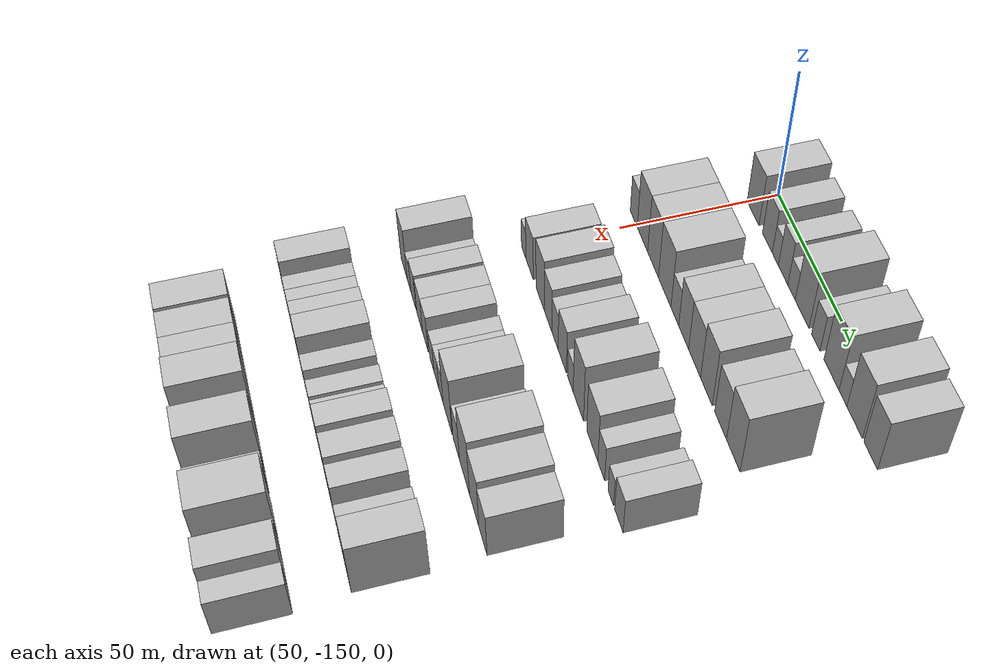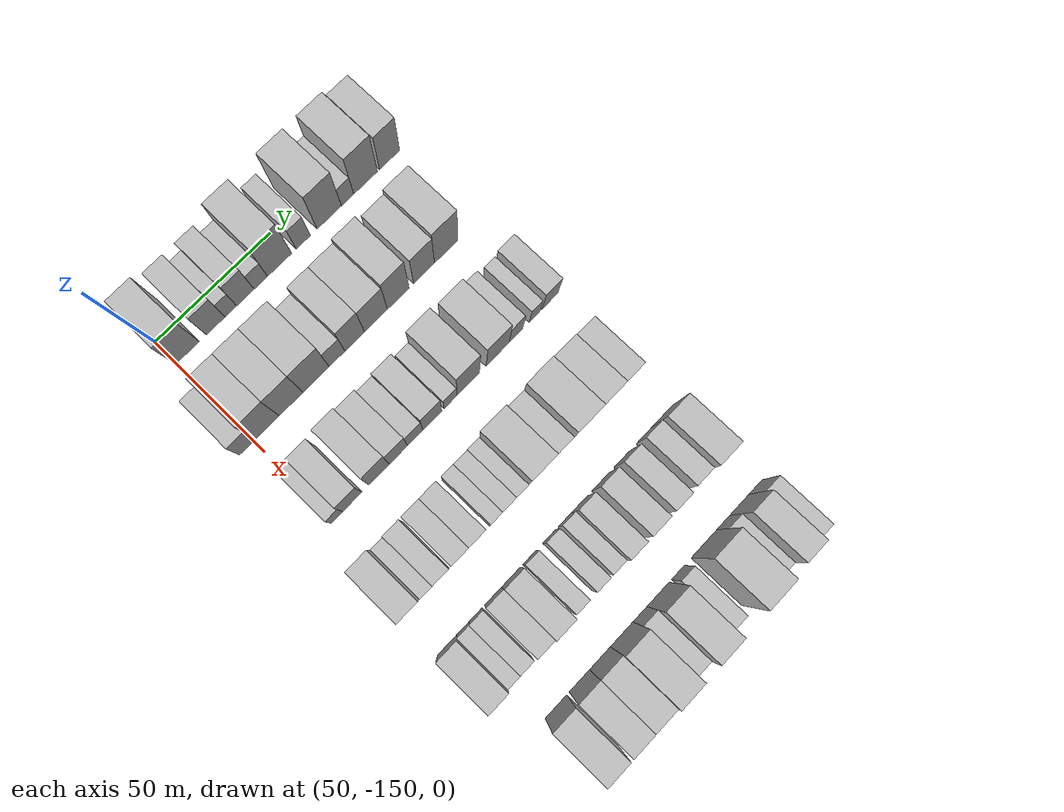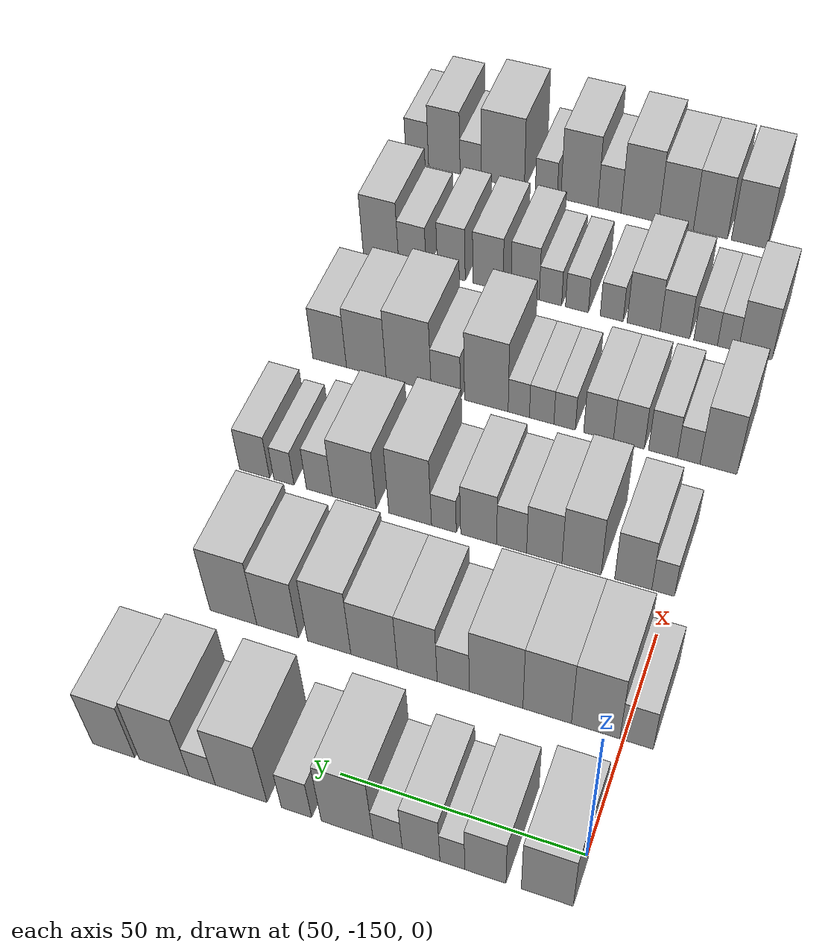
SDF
<sdf version="1.6">
 <world name="default">
  <model name="building_50">
   <static>1</static>
   <pose>50.0000 -145.2269 0 0.000000 0.000000 0.000000</pose>
   <link name="link">
    <pose>0 0 10.50 0 0 0</pose>
    <collision name="collision"><geometry><box><size>20.0000 10.0897 21.0000</size></box></geometry></collision>
    <visual name="visual">
     <cast_shadows>0</cast_shadows>
     <geometry><box><size>20.0000 10.0897 21.0000</size></box></geometry>
     <material>
      <script>
       <uri>model://HANNAS_wall/materials/scripts</uri>
       <uri>model://HANNAS_wall/materials/textures</uri>
       <name>vrc/HANNAS_wall</name>
      </script>
     </material>
    </visual>
   </link>
  </model>
  <model name="building_51">
   <static>1</static>
   <pose>50.0000 -133.1259 0 0.000000 0.000000 0.000000</pose>
   <link name="link">
    <pose>0 0 9.00 0 0 0</pose>
    <collision name="collision"><geometry><box><size>20.0000 8.1121 18.0000</size></box></geometry></collision>
    <visual name="visual">
     <cast_shadows>0</cast_shadows>
     <geometry><box><size>20.0000 8.1121 18.0000</size></box></geometry>
     <material>
      <script>
       <uri>model://HANNAS_wall/materials/scripts</uri>
       <uri>model://HANNAS_wall/materials/textures</uri>
       <name>vrc/HANNAS_wall</name>
      </script>
     </material>
    </visual>
   </link>
  </model>
  <model name="building_52">
   <static>1</static>
   <pose>50.0000 -126.5854 0 0.000000 0.000000 0.000000</pose>
   <link name="link">
    <pose>0 0 6.00 0 0 0</pose>
    <collision name="collision"><geometry><box><size>20.0000 4.9690 12.0000</size></box></geometry></collision>
    <visual name="visual">
     <cast_shadows>0</cast_shadows>
     <geometry><box><size>20.0000 4.9690 12.0000</size></box></geometry>
     <material>
      <script>
       <uri>model://HANNAS_wall/materials/scripts</uri>
       <uri>model://HANNAS_wall/materials/textures</uri>
       <name>vrc/HANNAS_wall</name>
      </script>
     </material>
    </visual>
   </link>
  </model>
  <model name="building_53">
   <static>1</static>
   <pose>50.0000 -120.3051 0 0.000000 0.000000 0.000000</pose>
   <link name="link">
    <pose>0 0 9.00 0 0 0</pose>
    <collision name="collision"><geometry><box><size>20.0000 7.5916 18.0000</size></box></geometry></collision>
    <visual name="visual">
     <cast_shadows>0</cast_shadows>
     <geometry><box><size>20.0000 7.5916 18.0000</size></box></geometry>
     <material>
      <script>
       <uri>model://HANNAS_wall/materials/scripts</uri>
       <uri>model://HANNAS_wall/materials/textures</uri>
       <name>vrc/HANNAS_wall</name>
      </script>
     </material>
    </visual>
   </link>
  </model>
  <model name="building_54">
   <static>1</static>
   <pose>50.0000 -113.5616 0 0.000000 0.000000 0.000000</pose>
   <link name="link">
    <pose>0 0 6.00 0 0 0</pose>
    <collision name="collision"><geometry><box><size>20.0000 5.8954 12.0000</size></box></geometry></collision>
    <visual name="visual">
     <cast_shadows>0</cast_shadows>
     <geometry><box><size>20.0000 5.8954 12.0000</size></box></geometry>
     <material>
      <script>
       <uri>model://HANNAS_wall/materials/scripts</uri>
       <uri>model://HANNAS_wall/materials/textures</uri>
       <name>vrc/HANNAS_wall</name>
      </script>
     </material>
    </visual>
   </link>
  </model>
  <model name="building_55">
   <static>1</static>
   <pose>50.0000 -105.3079 0 0.000000 0.000000 0.000000</pose>
   <link name="link">
    <pose>0 0 12.00 0 0 0</pose>
    <collision name="collision"><geometry><box><size>20.0000 10.6120 24.0000</size></box></geometry></collision>
    <visual name="visual">
     <cast_shadows>0</cast_shadows>
     <geometry><box><size>20.0000 10.6120 24.0000</size></box></geometry>
     <material>
      <script>
       <uri>model://HANNAS_wall/materials/scripts</uri>
       <uri>model://HANNAS_wall/materials/textures</uri>
       <name>vrc/HANNAS_wall</name>
      </script>
     </material>
    </visual>
   </link>
  </model>
  <model name="building_56">
   <static>1</static>
   <pose>50.0000 -94.8474 0 0.000000 0.000000 0.000000</pose>
   <link name="link">
    <pose>0 0 7.50 0 0 0</pose>
    <collision name="collision"><geometry><box><size>20.0000 6.3090 15.0000</size></box></geometry></collision>
    <visual name="visual">
     <cast_shadows>0</cast_shadows>
     <geometry><box><size>20.0000 6.3090 15.0000</size></box></geometry>
     <material>
      <script>
       <uri>model://HANNAS_wall/materials/scripts</uri>
       <uri>model://HANNAS_wall/materials/textures</uri>
       <name>vrc/HANNAS_wall</name>
      </script>
     </material>
    </visual>
   </link>
  </model>
  <model name="building_57">
   <static>1</static>
   <pose>50.0000 -83.2250 0 0.000000 0.000000 0.000000</pose>
   <link name="link">
    <pose>0 0 12.00 0 0 0</pose>
    <collision name="collision"><geometry><box><size>20.0000 10.9358 24.0000</size></box></geometry></collision>
    <visual name="visual">
     <cast_shadows>0</cast_shadows>
     <geometry><box><size>20.0000 10.9358 24.0000</size></box></geometry>
     <material>
      <script>
       <uri>model://HANNAS_wall/materials/scripts</uri>
       <uri>model://HANNAS_wall/materials/textures</uri>
       <name>vrc/HANNAS_wall</name>
      </script>
     </material>
    </visual>
   </link>
  </model>
  <model name="building_58">
   <static>1</static>
   <pose>50.0000 -74.9646 0 0.000000 0.000000 0.000000</pose>
   <link name="link">
    <pose>0 0 6.00 0 0 0</pose>
    <collision name="collision"><geometry><box><size>20.0000 5.5850 12.0000</size></box></geometry></collision>
    <visual name="visual">
     <cast_shadows>0</cast_shadows>
     <geometry><box><size>20.0000 5.5850 12.0000</size></box></geometry>
     <material>
      <script>
       <uri>model://HANNAS_wall/materials/scripts</uri>
       <uri>model://HANNAS_wall/materials/textures</uri>
       <name>vrc/HANNAS_wall</name>
      </script>
     </material>
    </visual>
   </link>
  </model>
  <model name="building_59">
   <static>1</static>
   <pose>50.0000 -66.7866 0 0.000000 0.000000 0.000000</pose>
   <link name="link">
    <pose>0 0 12.00 0 0 0</pose>
    <collision name="collision"><geometry><box><size>20.0000 10.7712 24.0000</size></box></geometry></collision>
    <visual name="visual">
     <cast_shadows>0</cast_shadows>
     <geometry><box><size>20.0000 10.7712 24.0000</size></box></geometry>
     <material>
      <script>
       <uri>model://HANNAS_wall/materials/scripts</uri>
       <uri>model://HANNAS_wall/materials/textures</uri>
       <name>vrc/HANNAS_wall</name>
      </script>
     </material>
    </visual>
   </link>
  </model>
  <model name="building_60">
   <static>1</static>
   <pose>50.0000 -55.7964 0 0.000000 0.000000 0.000000</pose>
   <link name="link">
    <pose>0 0 10.50 0 0 0</pose>
    <collision name="collision"><geometry><box><size>20.0000 9.2092 21.0000</size></box></geometry></collision>
    <visual name="visual">
     <cast_shadows>0</cast_shadows>
     <geometry><box><size>20.0000 9.2092 21.0000</size></box></geometry>
     <material>
      <script>
       <uri>model://HANNAS_wall/materials/scripts</uri>
       <uri>model://HANNAS_wall/materials/textures</uri>
       <name>vrc/HANNAS_wall</name>
      </script>
     </material>
    </visual>
   </link>
  </model>
  <model name="building_173">
   <static>1</static>
   <pose>85.0000 -152.5597 0 0.000000 0.000000 0.000000</pose>
   <link name="link">
    <pose>0 0 7.50 0 0 0</pose>
    <collision name="collision"><geometry><box><size>20.0000 6.8499 15.0000</size></box></geometry></collision>
    <visual name="visual">
     <cast_shadows>0</cast_shadows>
     <geometry><box><size>20.0000 6.8499 15.0000</size></box></geometry>
     <material>
      <script>
       <uri>model://HANNAS_wall/materials/scripts</uri>
       <uri>model://HANNAS_wall/materials/textures</uri>
       <name>vrc/HANNAS_wall</name>
      </script>
     </material>
    </visual>
   </link>
  </model>
  <model name="building_174">
   <static>1</static>
   <pose>85.0000 -144.1277 0 0.000000 0.000000 0.000000</pose>
   <link name="link">
    <pose>0 0 12.00 0 0 0</pose>
    <collision name="collision"><geometry><box><size>20.0000 10.0141 24.0000</size></box></geometry></collision>
    <visual name="visual">
     <cast_shadows>0</cast_shadows>
     <geometry><box><size>20.0000 10.0141 24.0000</size></box></geometry>
     <material>
      <script>
       <uri>model://HANNAS_wall/materials/scripts</uri>
       <uri>model://HANNAS_wall/materials/textures</uri>
       <name>vrc/HANNAS_wall</name>
      </script>
     </material>
    </visual>
   </link>
  </model>
  <model name="building_175">
   <static>1</static>
   <pose>85.0000 -134.0422 0 0.000000 0.000000 0.000000</pose>
   <link name="link">
    <pose>0 0 12.00 0 0 0</pose>
    <collision name="collision"><geometry><box><size>20.0000 10.1569 24.0000</size></box></geometry></collision>
    <visual name="visual">
     <cast_shadows>0</cast_shadows>
     <geometry><box><size>20.0000 10.1569 24.0000</size></box></geometry>
     <material>
      <script>
       <uri>model://HANNAS_wall/materials/scripts</uri>
       <uri>model://HANNAS_wall/materials/textures</uri>
       <name>vrc/HANNAS_wall</name>
      </script>
     </material>
    </visual>
   </link>
  </model>
  <model name="building_176">
   <static>1</static>
   <pose>85.0000 -123.2810 0 0.000000 0.000000 0.000000</pose>
   <link name="link">
    <pose>0 0 12.00 0 0 0</pose>
    <collision name="collision"><geometry><box><size>20.0000 11.3655 24.0000</size></box></geometry></collision>
    <visual name="visual">
     <cast_shadows>0</cast_shadows>
     <geometry><box><size>20.0000 11.3655 24.0000</size></box></geometry>
     <material>
      <script>
       <uri>model://HANNAS_wall/materials/scripts</uri>
       <uri>model://HANNAS_wall/materials/textures</uri>
       <name>vrc/HANNAS_wall</name>
      </script>
     </material>
    </visual>
   </link>
  </model>
  <model name="building_177">
   <static>1</static>
   <pose>85.0000 -114.1493 0 0.000000 0.000000 0.000000</pose>
   <link name="link">
    <pose>0 0 7.50 0 0 0</pose>
    <collision name="collision"><geometry><box><size>20.0000 6.8978 15.0000</size></box></geometry></collision>
    <visual name="visual">
     <cast_shadows>0</cast_shadows>
     <geometry><box><size>20.0000 6.8978 15.0000</size></box></geometry>
     <material>
      <script>
       <uri>model://HANNAS_wall/materials/scripts</uri>
       <uri>model://HANNAS_wall/materials/textures</uri>
       <name>vrc/HANNAS_wall</name>
      </script>
     </material>
    </visual>
   </link>
  </model>
  <model name="building_178">
   <static>1</static>
   <pose>85.0000 -106.3843 0 0.000000 0.000000 0.000000</pose>
   <link name="link">
    <pose>0 0 10.50 0 0 0</pose>
    <collision name="collision"><geometry><box><size>20.0000 8.6324 21.0000</size></box></geometry></collision>
    <visual name="visual">
     <cast_shadows>0</cast_shadows>
     <geometry><box><size>20.0000 8.6324 21.0000</size></box></geometry>
     <material>
      <script>
       <uri>model://HANNAS_wall/materials/scripts</uri>
       <uri>model://HANNAS_wall/materials/textures</uri>
       <name>vrc/HANNAS_wall</name>
      </script>
     </material>
    </visual>
   </link>
  </model>
  <model name="building_179">
   <static>1</static>
   <pose>85.0000 -96.9571 0 0.000000 0.000000 0.000000</pose>
   <link name="link">
    <pose>0 0 10.50 0 0 0</pose>
    <collision name="collision"><geometry><box><size>20.0000 10.2219 21.0000</size></box></geometry></collision>
    <visual name="visual">
     <cast_shadows>0</cast_shadows>
     <geometry><box><size>20.0000 10.2219 21.0000</size></box></geometry>
     <material>
      <script>
       <uri>model://HANNAS_wall/materials/scripts</uri>
       <uri>model://HANNAS_wall/materials/textures</uri>
       <name>vrc/HANNAS_wall</name>
      </script>
     </material>
    </visual>
   </link>
  </model>
  <model name="building_180">
   <static>1</static>
   <pose>85.0000 -87.0133 0 0.000000 0.000000 0.000000</pose>
   <link name="link">
    <pose>0 0 12.00 0 0 0</pose>
    <collision name="collision"><geometry><box><size>20.0000 9.6657 24.0000</size></box></geometry></collision>
    <visual name="visual">
     <cast_shadows>0</cast_shadows>
     <geometry><box><size>20.0000 9.6657 24.0000</size></box></geometry>
     <material>
      <script>
       <uri>model://HANNAS_wall/materials/scripts</uri>
       <uri>model://HANNAS_wall/materials/textures</uri>
       <name>vrc/HANNAS_wall</name>
      </script>
     </material>
    </visual>
   </link>
  </model>
  <model name="building_181">
   <static>1</static>
   <pose>85.0000 -75.4759 0 0.000000 0.000000 0.000000</pose>
   <link name="link">
    <pose>0 0 10.50 0 0 0</pose>
    <collision name="collision"><geometry><box><size>20.0000 9.4091 21.0000</size></box></geometry></collision>
    <visual name="visual">
     <cast_shadows>0</cast_shadows>
     <geometry><box><size>20.0000 9.4091 21.0000</size></box></geometry>
     <material>
      <script>
       <uri>model://HANNAS_wall/materials/scripts</uri>
       <uri>model://HANNAS_wall/materials/textures</uri>
       <name>vrc/HANNAS_wall</name>
      </script>
     </material>
    </visual>
   </link>
  </model>
  <model name="building_182">
   <static>1</static>
   <pose>85.0000 -65.4467 0 0.000000 0.000000 0.000000</pose>
   <link name="link">
    <pose>0 0 12.00 0 0 0</pose>
    <collision name="collision"><geometry><box><size>20.0000 10.6491 24.0000</size></box></geometry></collision>
    <visual name="visual">
     <cast_shadows>0</cast_shadows>
     <geometry><box><size>20.0000 10.6491 24.0000</size></box></geometry>
     <material>
      <script>
       <uri>model://HANNAS_wall/materials/scripts</uri>
       <uri>model://HANNAS_wall/materials/textures</uri>
       <name>vrc/HANNAS_wall</name>
      </script>
     </material>
    </visual>
   </link>
  </model>
  <model name="building_301">
   <static>1</static>
   <pose>120.0000 -148.5666 0 0.000000 0.000000 0.000000</pose>
   <link name="link">
    <pose>0 0 6.00 0 0 0</pose>
    <collision name="collision"><geometry><box><size>20.0000 4.9468 12.0000</size></box></geometry></collision>
    <visual name="visual">
     <cast_shadows>0</cast_shadows>
     <geometry><box><size>20.0000 4.9468 12.0000</size></box></geometry>
     <material>
      <script>
       <uri>model://HANNAS_wall/materials/scripts</uri>
       <uri>model://HANNAS_wall/materials/textures</uri>
       <name>vrc/HANNAS_wall</name>
      </script>
     </material>
    </visual>
   </link>
  </model>
  <model name="building_302">
   <static>1</static>
   <pose>120.0000 -142.0210 0 0.000000 0.000000 0.000000</pose>
   <link name="link">
    <pose>0 0 9.00 0 0 0</pose>
    <collision name="collision"><geometry><box><size>20.0000 8.1444 18.0000</size></box></geometry></collision>
    <visual name="visual">
     <cast_shadows>0</cast_shadows>
     <geometry><box><size>20.0000 8.1444 18.0000</size></box></geometry>
     <material>
      <script>
       <uri>model://HANNAS_wall/materials/scripts</uri>
       <uri>model://HANNAS_wall/materials/textures</uri>
       <name>vrc/HANNAS_wall</name>
      </script>
     </material>
    </visual>
   </link>
  </model>
  <model name="building_303">
   <static>1</static>
   <pose>120.0000 -130.5805 0 0.000000 0.000000 0.000000</pose>
   <link name="link">
    <pose>0 0 10.50 0 0 0</pose>
    <collision name="collision"><geometry><box><size>20.0000 8.7367 21.0000</size></box></geometry></collision>
    <visual name="visual">
     <cast_shadows>0</cast_shadows>
     <geometry><box><size>20.0000 8.7367 21.0000</size></box></geometry>
     <material>
      <script>
       <uri>model://HANNAS_wall/materials/scripts</uri>
       <uri>model://HANNAS_wall/materials/textures</uri>
       <name>vrc/HANNAS_wall</name>
      </script>
     </material>
    </visual>
   </link>
  </model>
  <model name="building_304">
   <static>1</static>
   <pose>120.0000 -122.2394 0 0.000000 0.000000 0.000000</pose>
   <link name="link">
    <pose>0 0 9.00 0 0 0</pose>
    <collision name="collision"><geometry><box><size>20.0000 7.9455 18.0000</size></box></geometry></collision>
    <visual name="visual">
     <cast_shadows>0</cast_shadows>
     <geometry><box><size>20.0000 7.9455 18.0000</size></box></geometry>
     <material>
      <script>
       <uri>model://HANNAS_wall/materials/scripts</uri>
       <uri>model://HANNAS_wall/materials/textures</uri>
       <name>vrc/HANNAS_wall</name>
      </script>
     </material>
    </visual>
   </link>
  </model>
  <model name="building_305">
   <static>1</static>
   <pose>120.0000 -114.8902 0 0.000000 0.000000 0.000000</pose>
   <link name="link">
    <pose>0 0 7.50 0 0 0</pose>
    <collision name="collision"><geometry><box><size>20.0000 6.7528 15.0000</size></box></geometry></collision>
    <visual name="visual">
     <cast_shadows>0</cast_shadows>
     <geometry><box><size>20.0000 6.7528 15.0000</size></box></geometry>
     <material>
      <script>
       <uri>model://HANNAS_wall/materials/scripts</uri>
       <uri>model://HANNAS_wall/materials/textures</uri>
       <name>vrc/HANNAS_wall</name>
      </script>
     </material>
    </visual>
   </link>
  </model>
  <model name="building_306">
   <static>1</static>
   <pose>120.0000 -107.3835 0 0.000000 0.000000 0.000000</pose>
   <link name="link">
    <pose>0 0 9.00 0 0 0</pose>
    <collision name="collision"><geometry><box><size>20.0000 8.2606 18.0000</size></box></geometry></collision>
    <visual name="visual">
     <cast_shadows>0</cast_shadows>
     <geometry><box><size>20.0000 8.2606 18.0000</size></box></geometry>
     <material>
      <script>
       <uri>model://HANNAS_wall/materials/scripts</uri>
       <uri>model://HANNAS_wall/materials/textures</uri>
       <name>vrc/HANNAS_wall</name>
      </script>
     </material>
    </visual>
   </link>
  </model>
  <model name="building_307">
   <static>1</static>
   <pose>120.0000 -99.3893 0 0.000000 0.000000 0.000000</pose>
   <link name="link">
    <pose>0 0 6.00 0 0 0</pose>
    <collision name="collision"><geometry><box><size>20.0000 5.7278 12.0000</size></box></geometry></collision>
    <visual name="visual">
     <cast_shadows>0</cast_shadows>
     <geometry><box><size>20.0000 5.7278 12.0000</size></box></geometry>
     <material>
      <script>
       <uri>model://HANNAS_wall/materials/scripts</uri>
       <uri>model://HANNAS_wall/materials/textures</uri>
       <name>vrc/HANNAS_wall</name>
      </script>
     </material>
    </visual>
   </link>
  </model>
  <model name="building_308">
   <static>1</static>
   <pose>120.0000 -91.5436 0 0.000000 0.000000 0.000000</pose>
   <link name="link">
    <pose>0 0 12.00 0 0 0</pose>
    <collision name="collision"><geometry><box><size>20.0000 9.9637 24.0000</size></box></geometry></collision>
    <visual name="visual">
     <cast_shadows>0</cast_shadows>
     <geometry><box><size>20.0000 9.9637 24.0000</size></box></geometry>
     <material>
      <script>
       <uri>model://HANNAS_wall/materials/scripts</uri>
       <uri>model://HANNAS_wall/materials/textures</uri>
       <name>vrc/HANNAS_wall</name>
      </script>
     </material>
    </visual>
   </link>
  </model>
  <model name="building_309">
   <static>1</static>
   <pose>120.0000 -78.3502 0 0.000000 0.000000 0.000000</pose>
   <link name="link">
    <pose>0 0 10.50 0 0 0</pose>
    <collision name="collision"><geometry><box><size>20.0000 10.4231 21.0000</size></box></geometry></collision>
    <visual name="visual">
     <cast_shadows>0</cast_shadows>
     <geometry><box><size>20.0000 10.4231 21.0000</size></box></geometry>
     <material>
      <script>
       <uri>model://HANNAS_wall/materials/scripts</uri>
       <uri>model://HANNAS_wall/materials/textures</uri>
       <name>vrc/HANNAS_wall</name>
      </script>
     </material>
    </visual>
   </link>
  </model>
  <model name="building_310">
   <static>1</static>
   <pose>120.0000 -70.0606 0 0.000000 0.000000 0.000000</pose>
   <link name="link">
    <pose>0 0 7.50 0 0 0</pose>
    <collision name="collision"><geometry><box><size>20.0000 6.1561 15.0000</size></box></geometry></collision>
    <visual name="visual">
     <cast_shadows>0</cast_shadows>
     <geometry><box><size>20.0000 6.1561 15.0000</size></box></geometry>
     <material>
      <script>
       <uri>model://HANNAS_wall/materials/scripts</uri>
       <uri>model://HANNAS_wall/materials/textures</uri>
       <name>vrc/HANNAS_wall</name>
      </script>
     </material>
    </visual>
   </link>
  </model>
  <model name="building_311">
   <static>1</static>
   <pose>120.0000 -61.5559 0 0.000000 0.000000 0.000000</pose>
   <link name="link">
    <pose>0 0 6.00 0 0 0</pose>
    <collision name="collision"><geometry><box><size>20.0000 4.8532 12.0000</size></box></geometry></collision>
    <visual name="visual">
     <cast_shadows>0</cast_shadows>
     <geometry><box><size>20.0000 4.8532 12.0000</size></box></geometry>
     <material>
      <script>
       <uri>model://HANNAS_wall/materials/scripts</uri>
       <uri>model://HANNAS_wall/materials/textures</uri>
       <name>vrc/HANNAS_wall</name>
      </script>
     </material>
    </visual>
   </link>
  </model>
  <model name="building_312">
   <static>1</static>
   <pose>120.0000 -54.4725 0 0.000000 0.000000 0.000000</pose>
   <link name="link">
    <pose>0 0 7.50 0 0 0</pose>
    <collision name="collision"><geometry><box><size>20.0000 7.3135 15.0000</size></box></geometry></collision>
    <visual name="visual">
     <cast_shadows>0</cast_shadows>
     <geometry><box><size>20.0000 7.3135 15.0000</size></box></geometry>
     <material>
      <script>
       <uri>model://HANNAS_wall/materials/scripts</uri>
       <uri>model://HANNAS_wall/materials/textures</uri>
       <name>vrc/HANNAS_wall</name>
      </script>
     </material>
    </visual>
   </link>
  </model>
  <model name="building_426">
   <static>1</static>
   <pose>155.0000 -151.9284 0 0.000000 0.000000 0.000000</pose>
   <link name="link">
    <pose>0 0 10.50 0 0 0</pose>
    <collision name="collision"><geometry><box><size>20.0000 8.4810 21.0000</size></box></geometry></collision>
    <visual name="visual">
     <cast_shadows>0</cast_shadows>
     <geometry><box><size>20.0000 8.4810 21.0000</size></box></geometry>
     <material>
      <script>
       <uri>model://HANNAS_wall/materials/scripts</uri>
       <uri>model://HANNAS_wall/materials/textures</uri>
       <name>vrc/HANNAS_wall</name>
      </script>
     </material>
    </visual>
   </link>
  </model>
  <model name="building_427">
   <static>1</static>
   <pose>155.0000 -145.0652 0 0.000000 0.000000 0.000000</pose>
   <link name="link">
    <pose>0 0 6.00 0 0 0</pose>
    <collision name="collision"><geometry><box><size>20.0000 5.2454 12.0000</size></box></geometry></collision>
    <visual name="visual">
     <cast_shadows>0</cast_shadows>
     <geometry><box><size>20.0000 5.2454 12.0000</size></box></geometry>
     <material>
      <script>
       <uri>model://HANNAS_wall/materials/scripts</uri>
       <uri>model://HANNAS_wall/materials/textures</uri>
       <name>vrc/HANNAS_wall</name>
      </script>
     </material>
    </visual>
   </link>
  </model>
  <model name="building_428">
   <static>1</static>
   <pose>155.0000 -139.1017 0 0.000000 0.000000 0.000000</pose>
   <link name="link">
    <pose>0 0 7.50 0 0 0</pose>
    <collision name="collision"><geometry><box><size>20.0000 6.6816 15.0000</size></box></geometry></collision>
    <visual name="visual">
     <cast_shadows>0</cast_shadows>
     <geometry><box><size>20.0000 6.6816 15.0000</size></box></geometry>
     <material>
      <script>
       <uri>model://HANNAS_wall/materials/scripts</uri>
       <uri>model://HANNAS_wall/materials/textures</uri>
       <name>vrc/HANNAS_wall</name>
      </script>
     </material>
    </visual>
   </link>
  </model>
  <model name="building_429">
   <static>1</static>
   <pose>155.0000 -131.1375 0 0.000000 0.000000 0.000000</pose>
   <link name="link">
    <pose>0 0 7.50 0 0 0</pose>
    <collision name="collision"><geometry><box><size>20.0000 7.2468 15.0000</size></box></geometry></collision>
    <visual name="visual">
     <cast_shadows>0</cast_shadows>
     <geometry><box><size>20.0000 7.2468 15.0000</size></box></geometry>
     <material>
      <script>
       <uri>model://HANNAS_wall/materials/scripts</uri>
       <uri>model://HANNAS_wall/materials/textures</uri>
       <name>vrc/HANNAS_wall</name>
      </script>
     </material>
    </visual>
   </link>
  </model>
  <model name="building_430">
   <static>1</static>
   <pose>155.0000 -123.9995 0 0.000000 0.000000 0.000000</pose>
   <link name="link">
    <pose>0 0 7.50 0 0 0</pose>
    <collision name="collision"><geometry><box><size>20.0000 7.0292 15.0000</size></box></geometry></collision>
    <visual name="visual">
     <cast_shadows>0</cast_shadows>
     <geometry><box><size>20.0000 7.0292 15.0000</size></box></geometry>
     <material>
      <script>
       <uri>model://HANNAS_wall/materials/scripts</uri>
       <uri>model://HANNAS_wall/materials/textures</uri>
       <name>vrc/HANNAS_wall</name>
      </script>
     </material>
    </visual>
   </link>
  </model>
  <model name="building_431">
   <static>1</static>
   <pose>155.0000 -115.9286 0 0.000000 0.000000 0.000000</pose>
   <link name="link">
    <pose>0 0 6.00 0 0 0</pose>
    <collision name="collision"><geometry><box><size>20.0000 5.1125 12.0000</size></box></geometry></collision>
    <visual name="visual">
     <cast_shadows>0</cast_shadows>
     <geometry><box><size>20.0000 5.1125 12.0000</size></box></geometry>
     <material>
      <script>
       <uri>model://HANNAS_wall/materials/scripts</uri>
       <uri>model://HANNAS_wall/materials/textures</uri>
       <name>vrc/HANNAS_wall</name>
      </script>
     </material>
    </visual>
   </link>
  </model>
  <model name="building_432">
   <static>1</static>
   <pose>155.0000 -110.4306 0 0.000000 0.000000 0.000000</pose>
   <link name="link">
    <pose>0 0 6.00 0 0 0</pose>
    <collision name="collision"><geometry><box><size>20.0000 5.8835 12.0000</size></box></geometry></collision>
    <visual name="visual">
     <cast_shadows>0</cast_shadows>
     <geometry><box><size>20.0000 5.8835 12.0000</size></box></geometry>
     <material>
      <script>
       <uri>model://HANNAS_wall/materials/scripts</uri>
       <uri>model://HANNAS_wall/materials/textures</uri>
       <name>vrc/HANNAS_wall</name>
      </script>
     </material>
    </visual>
   </link>
  </model>
  <model name="building_433">
   <static>1</static>
   <pose>155.0000 -104.9142 0 0.000000 0.000000 0.000000</pose>
   <link name="link">
    <pose>0 0 6.00 0 0 0</pose>
    <collision name="collision"><geometry><box><size>20.0000 5.1493 12.0000</size></box></geometry></collision>
    <visual name="visual">
     <cast_shadows>0</cast_shadows>
     <geometry><box><size>20.0000 5.1493 12.0000</size></box></geometry>
     <material>
      <script>
       <uri>model://HANNAS_wall/materials/scripts</uri>
       <uri>model://HANNAS_wall/materials/textures</uri>
       <name>vrc/HANNAS_wall</name>
      </script>
     </material>
    </visual>
   </link>
  </model>
  <model name="building_434">
   <static>1</static>
   <pose>155.0000 -97.0307 0 0.000000 0.000000 0.000000</pose>
   <link name="link">
    <pose>0 0 12.00 0 0 0</pose>
    <collision name="collision"><geometry><box><size>20.0000 10.6175 24.0000</size></box></geometry></collision>
    <visual name="visual">
     <cast_shadows>0</cast_shadows>
     <geometry><box><size>20.0000 10.6175 24.0000</size></box></geometry>
     <material>
      <script>
       <uri>model://HANNAS_wall/materials/scripts</uri>
       <uri>model://HANNAS_wall/materials/textures</uri>
       <name>vrc/HANNAS_wall</name>
      </script>
     </material>
    </visual>
   </link>
  </model>
  <model name="building_435">
   <static>1</static>
   <pose>155.0000 -87.1105 0 0.000000 0.000000 0.000000</pose>
   <link name="link">
    <pose>0 0 7.50 0 0 0</pose>
    <collision name="collision"><geometry><box><size>20.0000 7.2230 15.0000</size></box></geometry></collision>
    <visual name="visual">
     <cast_shadows>0</cast_shadows>
     <geometry><box><size>20.0000 7.2230 15.0000</size></box></geometry>
     <material>
      <script>
       <uri>model://HANNAS_wall/materials/scripts</uri>
       <uri>model://HANNAS_wall/materials/textures</uri>
       <name>vrc/HANNAS_wall</name>
      </script>
     </material>
    </visual>
   </link>
  </model>
  <model name="building_436">
   <static>1</static>
   <pose>155.0000 -77.8862 0 0.000000 0.000000 0.000000</pose>
   <link name="link">
    <pose>0 0 12.00 0 0 0</pose>
    <collision name="collision"><geometry><box><size>20.0000 11.2255 24.0000</size></box></geometry></collision>
    <visual name="visual">
     <cast_shadows>0</cast_shadows>
     <geometry><box><size>20.0000 11.2255 24.0000</size></box></geometry>
     <material>
      <script>
       <uri>model://HANNAS_wall/materials/scripts</uri>
       <uri>model://HANNAS_wall/materials/textures</uri>
       <name>vrc/HANNAS_wall</name>
      </script>
     </material>
    </visual>
   </link>
  </model>
  <model name="building_437">
   <static>1</static>
   <pose>155.0000 -67.2602 0 0.000000 0.000000 0.000000</pose>
   <link name="link">
    <pose>0 0 10.50 0 0 0</pose>
    <collision name="collision"><geometry><box><size>20.0000 10.0267 21.0000</size></box></geometry></collision>
    <visual name="visual">
     <cast_shadows>0</cast_shadows>
     <geometry><box><size>20.0000 10.0267 21.0000</size></box></geometry>
     <material>
      <script>
       <uri>model://HANNAS_wall/materials/scripts</uri>
       <uri>model://HANNAS_wall/materials/textures</uri>
       <name>vrc/HANNAS_wall</name>
      </script>
     </material>
    </visual>
   </link>
  </model>
  <model name="building_438">
   <static>1</static>
   <pose>155.0000 -57.9717 0 0.000000 0.000000 0.000000</pose>
   <link name="link">
    <pose>0 0 9.00 0 0 0</pose>
    <collision name="collision"><geometry><box><size>20.0000 8.5504 18.0000</size></box></geometry></collision>
    <visual name="visual">
     <cast_shadows>0</cast_shadows>
     <geometry><box><size>20.0000 8.5504 18.0000</size></box></geometry>
     <material>
      <script>
       <uri>model://HANNAS_wall/materials/scripts</uri>
       <uri>model://HANNAS_wall/materials/textures</uri>
       <name>vrc/HANNAS_wall</name>
      </script>
     </material>
    </visual>
   </link>
  </model>
  <model name="building_554">
   <static>1</static>
   <pose>190.0000 -152.2055 0 0.000000 0.000000 0.000000</pose>
   <link name="link">
    <pose>0 0 9.00 0 0 0</pose>
    <collision name="collision"><geometry><box><size>20.0000 8.1970 18.0000</size></box></geometry></collision>
    <visual name="visual">
     <cast_shadows>0</cast_shadows>
     <geometry><box><size>20.0000 8.1970 18.0000</size></box></geometry>
     <material>
      <script>
       <uri>model://HANNAS_wall/materials/scripts</uri>
       <uri>model://HANNAS_wall/materials/textures</uri>
       <name>vrc/HANNAS_wall</name>
      </script>
     </material>
    </visual>
   </link>
  </model>
  <model name="building_555">
   <static>1</static>
   <pose>190.0000 -145.5889 0 0.000000 0.000000 0.000000</pose>
   <link name="link">
    <pose>0 0 6.00 0 0 0</pose>
    <collision name="collision"><geometry><box><size>20.0000 5.0362 12.0000</size></box></geometry></collision>
    <visual name="visual">
     <cast_shadows>0</cast_shadows>
     <geometry><box><size>20.0000 5.0362 12.0000</size></box></geometry>
     <material>
      <script>
       <uri>model://HANNAS_wall/materials/scripts</uri>
       <uri>model://HANNAS_wall/materials/textures</uri>
       <name>vrc/HANNAS_wall</name>
      </script>
     </material>
    </visual>
   </link>
  </model>
  <model name="building_556">
   <static>1</static>
   <pose>190.0000 -140.1961 0 0.000000 0.000000 0.000000</pose>
   <link name="link">
    <pose>0 0 6.00 0 0 0</pose>
    <collision name="collision"><geometry><box><size>20.0000 5.7494 12.0000</size></box></geometry></collision>
    <visual name="visual">
     <cast_shadows>0</cast_shadows>
     <geometry><box><size>20.0000 5.7494 12.0000</size></box></geometry>
     <material>
      <script>
       <uri>model://HANNAS_wall/materials/scripts</uri>
       <uri>model://HANNAS_wall/materials/textures</uri>
       <name>vrc/HANNAS_wall</name>
      </script>
     </material>
    </visual>
   </link>
  </model>
  <model name="building_557">
   <static>1</static>
   <pose>190.0000 -132.6513 0 0.000000 0.000000 0.000000</pose>
   <link name="link">
    <pose>0 0 7.50 0 0 0</pose>
    <collision name="collision"><geometry><box><size>20.0000 7.3403 15.0000</size></box></geometry></collision>
    <visual name="visual">
     <cast_shadows>0</cast_shadows>
     <geometry><box><size>20.0000 7.3403 15.0000</size></box></geometry>
     <material>
      <script>
       <uri>model://HANNAS_wall/materials/scripts</uri>
       <uri>model://HANNAS_wall/materials/textures</uri>
       <name>vrc/HANNAS_wall</name>
      </script>
     </material>
    </visual>
   </link>
  </model>
  <model name="building_558">
   <static>1</static>
   <pose>190.0000 -124.8842 0 0.000000 0.000000 0.000000</pose>
   <link name="link">
    <pose>0 0 9.00 0 0 0</pose>
    <collision name="collision"><geometry><box><size>20.0000 8.1941 18.0000</size></box></geometry></collision>
    <visual name="visual">
     <cast_shadows>0</cast_shadows>
     <geometry><box><size>20.0000 8.1941 18.0000</size></box></geometry>
     <material>
      <script>
       <uri>model://HANNAS_wall/materials/scripts</uri>
       <uri>model://HANNAS_wall/materials/textures</uri>
       <name>vrc/HANNAS_wall</name>
      </script>
     </material>
    </visual>
   </link>
  </model>
  <model name="building_559">
   <static>1</static>
   <pose>190.0000 -116.9172 0 0.000000 0.000000 0.000000</pose>
   <link name="link">
    <pose>0 0 6.00 0 0 0</pose>
    <collision name="collision"><geometry><box><size>20.0000 5.7399 12.0000</size></box></geometry></collision>
    <visual name="visual">
     <cast_shadows>0</cast_shadows>
     <geometry><box><size>20.0000 5.7399 12.0000</size></box></geometry>
     <material>
      <script>
       <uri>model://HANNAS_wall/materials/scripts</uri>
       <uri>model://HANNAS_wall/materials/textures</uri>
       <name>vrc/HANNAS_wall</name>
      </script>
     </material>
    </visual>
   </link>
  </model>
  <model name="building_560">
   <static>1</static>
   <pose>190.0000 -108.1594 0 0.000000 0.000000 0.000000</pose>
   <link name="link">
    <pose>0 0 6.00 0 0 0</pose>
    <collision name="collision"><geometry><box><size>20.0000 5.7757 12.0000</size></box></geometry></collision>
    <visual name="visual">
     <cast_shadows>0</cast_shadows>
     <geometry><box><size>20.0000 5.7757 12.0000</size></box></geometry>
     <material>
      <script>
       <uri>model://HANNAS_wall/materials/scripts</uri>
       <uri>model://HANNAS_wall/materials/textures</uri>
       <name>vrc/HANNAS_wall</name>
      </script>
     </material>
    </visual>
   </link>
  </model>
  <model name="building_561">
   <static>1</static>
   <pose>190.0000 -101.4158 0 0.000000 0.000000 0.000000</pose>
   <link name="link">
    <pose>0 0 6.00 0 0 0</pose>
    <collision name="collision"><geometry><box><size>20.0000 5.7114 12.0000</size></box></geometry></collision>
    <visual name="visual">
     <cast_shadows>0</cast_shadows>
     <geometry><box><size>20.0000 5.7114 12.0000</size></box></geometry>
     <material>
      <script>
       <uri>model://HANNAS_wall/materials/scripts</uri>
       <uri>model://HANNAS_wall/materials/textures</uri>
       <name>vrc/HANNAS_wall</name>
      </script>
     </material>
    </visual>
   </link>
  </model>
  <model name="building_562">
   <static>1</static>
   <pose>190.0000 -94.9399 0 0.000000 0.000000 0.000000</pose>
   <link name="link">
    <pose>0 0 9.00 0 0 0</pose>
    <collision name="collision"><geometry><box><size>20.0000 7.2405 18.0000</size></box></geometry></collision>
    <visual name="visual">
     <cast_shadows>0</cast_shadows>
     <geometry><box><size>20.0000 7.2405 18.0000</size></box></geometry>
     <material>
      <script>
       <uri>model://HANNAS_wall/materials/scripts</uri>
       <uri>model://HANNAS_wall/materials/textures</uri>
       <name>vrc/HANNAS_wall</name>
      </script>
     </material>
    </visual>
   </link>
  </model>
  <model name="building_563">
   <static>1</static>
   <pose>190.0000 -85.3856 0 0.000000 0.000000 0.000000</pose>
   <link name="link">
    <pose>0 0 9.00 0 0 0</pose>
    <collision name="collision"><geometry><box><size>20.0000 7.8682 18.0000</size></box></geometry></collision>
    <visual name="visual">
     <cast_shadows>0</cast_shadows>
     <geometry><box><size>20.0000 7.8682 18.0000</size></box></geometry>
     <material>
      <script>
       <uri>model://HANNAS_wall/materials/scripts</uri>
       <uri>model://HANNAS_wall/materials/textures</uri>
       <name>vrc/HANNAS_wall</name>
      </script>
     </material>
    </visual>
   </link>
  </model>
  <model name="building_564">
   <static>1</static>
   <pose>190.0000 -75.8311 0 0.000000 0.000000 0.000000</pose>
   <link name="link">
    <pose>0 0 9.00 0 0 0</pose>
    <collision name="collision"><geometry><box><size>20.0000 7.2407 18.0000</size></box></geometry></collision>
    <visual name="visual">
     <cast_shadows>0</cast_shadows>
     <geometry><box><size>20.0000 7.2407 18.0000</size></box></geometry>
     <material>
      <script>
       <uri>model://HANNAS_wall/materials/scripts</uri>
       <uri>model://HANNAS_wall/materials/textures</uri>
       <name>vrc/HANNAS_wall</name>
      </script>
     </material>
    </visual>
   </link>
  </model>
  <model name="building_565">
   <static>1</static>
   <pose>190.0000 -65.5764 0 0.000000 0.000000 0.000000</pose>
   <link name="link">
    <pose>0 0 7.50 0 0 0</pose>
    <collision name="collision"><geometry><box><size>20.0000 7.2688 15.0000</size></box></geometry></collision>
    <visual name="visual">
     <cast_shadows>0</cast_shadows>
     <geometry><box><size>20.0000 7.2688 15.0000</size></box></geometry>
     <material>
      <script>
       <uri>model://HANNAS_wall/materials/scripts</uri>
       <uri>model://HANNAS_wall/materials/textures</uri>
       <name>vrc/HANNAS_wall</name>
      </script>
     </material>
    </visual>
   </link>
  </model>
  <model name="building_566">
   <static>1</static>
   <pose>190.0000 -57.2176 0 0.000000 0.000000 0.000000</pose>
   <link name="link">
    <pose>0 0 10.50 0 0 0</pose>
    <collision name="collision"><geometry><box><size>20.0000 9.4487 21.0000</size></box></geometry></collision>
    <visual name="visual">
     <cast_shadows>0</cast_shadows>
     <geometry><box><size>20.0000 9.4487 21.0000</size></box></geometry>
     <material>
      <script>
       <uri>model://HANNAS_wall/materials/scripts</uri>
       <uri>model://HANNAS_wall/materials/textures</uri>
       <name>vrc/HANNAS_wall</name>
      </script>
     </material>
    </visual>
   </link>
  </model>
  <model name="building_683">
   <static>1</static>
   <pose>225.0000 -142.6750 0 0.000000 0.000000 0.000000</pose>
   <link name="link">
    <pose>0 0 10.50 0 0 0</pose>
    <collision name="collision"><geometry><box><size>20.0000 9.2388 21.0000</size></box></geometry></collision>
    <visual name="visual">
     <cast_shadows>0</cast_shadows>
     <geometry><box><size>20.0000 9.2388 21.0000</size></box></geometry>
     <material>
      <script>
       <uri>model://HANNAS_wall/materials/scripts</uri>
       <uri>model://HANNAS_wall/materials/textures</uri>
       <name>vrc/HANNAS_wall</name>
      </script>
     </material>
    </visual>
   </link>
  </model>
  <model name="building_684">
   <static>1</static>
   <pose>225.0000 -132.6343 0 0.000000 0.000000 0.000000</pose>
   <link name="link">
    <pose>0 0 10.50 0 0 0</pose>
    <collision name="collision"><geometry><box><size>20.0000 8.8425 21.0000</size></box></geometry></collision>
    <visual name="visual">
     <cast_shadows>0</cast_shadows>
     <geometry><box><size>20.0000 8.8425 21.0000</size></box></geometry>
     <material>
      <script>
       <uri>model://HANNAS_wall/materials/scripts</uri>
       <uri>model://HANNAS_wall/materials/textures</uri>
       <name>vrc/HANNAS_wall</name>
      </script>
     </material>
    </visual>
   </link>
  </model>
  <model name="building_685">
   <static>1</static>
   <pose>225.0000 -123.6884 0 0.000000 0.000000 0.000000</pose>
   <link name="link">
    <pose>0 0 10.50 0 0 0</pose>
    <collision name="collision"><geometry><box><size>20.0000 9.0493 21.0000</size></box></geometry></collision>
    <visual name="visual">
     <cast_shadows>0</cast_shadows>
     <geometry><box><size>20.0000 9.0493 21.0000</size></box></geometry>
     <material>
      <script>
       <uri>model://HANNAS_wall/materials/scripts</uri>
       <uri>model://HANNAS_wall/materials/textures</uri>
       <name>vrc/HANNAS_wall</name>
      </script>
     </material>
    </visual>
   </link>
  </model>
  <model name="building_686">
   <static>1</static>
   <pose>225.0000 -114.1965 0 0.000000 0.000000 0.000000</pose>
   <link name="link">
    <pose>0 0 12.00 0 0 0</pose>
    <collision name="collision"><geometry><box><size>20.0000 9.9345 24.0000</size></box></geometry></collision>
    <visual name="visual">
     <cast_shadows>0</cast_shadows>
     <geometry><box><size>20.0000 9.9345 24.0000</size></box></geometry>
     <material>
      <script>
       <uri>model://HANNAS_wall/materials/scripts</uri>
       <uri>model://HANNAS_wall/materials/textures</uri>
       <name>vrc/HANNAS_wall</name>
      </script>
     </material>
    </visual>
   </link>
  </model>
  <model name="building_687">
   <static>1</static>
   <pose>225.0000 -106.1368 0 0.000000 0.000000 0.000000</pose>
   <link name="link">
    <pose>0 0 7.50 0 0 0</pose>
    <collision name="collision"><geometry><box><size>20.0000 6.1848 15.0000</size></box></geometry></collision>
    <visual name="visual">
     <cast_shadows>0</cast_shadows>
     <geometry><box><size>20.0000 6.1848 15.0000</size></box></geometry>
     <material>
      <script>
       <uri>model://HANNAS_wall/materials/scripts</uri>
       <uri>model://HANNAS_wall/materials/textures</uri>
       <name>vrc/HANNAS_wall</name>
      </script>
     </material>
    </visual>
   </link>
  </model>
  <model name="building_688">
   <static>1</static>
   <pose>225.0000 -98.0972 0 0.000000 0.000000 0.000000</pose>
   <link name="link">
    <pose>0 0 12.00 0 0 0</pose>
    <collision name="collision"><geometry><box><size>20.0000 9.8944 24.0000</size></box></geometry></collision>
    <visual name="visual">
     <cast_shadows>0</cast_shadows>
     <geometry><box><size>20.0000 9.8944 24.0000</size></box></geometry>
     <material>
      <script>
       <uri>model://HANNAS_wall/materials/scripts</uri>
       <uri>model://HANNAS_wall/materials/textures</uri>
       <name>vrc/HANNAS_wall</name>
      </script>
     </material>
    </visual>
   </link>
  </model>
  <model name="building_689">
   <static>1</static>
   <pose>225.0000 -89.1955 0 0.000000 0.000000 0.000000</pose>
   <link name="link">
    <pose>0 0 6.00 0 0 0</pose>
    <collision name="collision"><geometry><box><size>20.0000 5.9091 12.0000</size></box></geometry></collision>
    <visual name="visual">
     <cast_shadows>0</cast_shadows>
     <geometry><box><size>20.0000 5.9091 12.0000</size></box></geometry>
     <material>
      <script>
       <uri>model://HANNAS_wall/materials/scripts</uri>
       <uri>model://HANNAS_wall/materials/textures</uri>
       <name>vrc/HANNAS_wall</name>
      </script>
     </material>
    </visual>
   </link>
  </model>
  <model name="building_690">
   <static>1</static>
   <pose>225.0000 -77.3686 0 0.000000 0.000000 0.000000</pose>
   <link name="link">
    <pose>0 0 12.00 0 0 0</pose>
    <collision name="collision"><geometry><box><size>20.0000 11.7448 24.0000</size></box></geometry></collision>
    <visual name="visual">
     <cast_shadows>0</cast_shadows>
     <geometry><box><size>20.0000 11.7448 24.0000</size></box></geometry>
     <material>
      <script>
       <uri>model://HANNAS_wall/materials/scripts</uri>
       <uri>model://HANNAS_wall/materials/textures</uri>
       <name>vrc/HANNAS_wall</name>
      </script>
     </material>
    </visual>
   </link>
  </model>
  <model name="building_691">
   <static>1</static>
   <pose>225.0000 -68.5518 0 0.000000 0.000000 0.000000</pose>
   <link name="link">
    <pose>0 0 6.00 0 0 0</pose>
    <collision name="collision"><geometry><box><size>20.0000 5.8887 12.0000</size></box></geometry></collision>
    <visual name="visual">
     <cast_shadows>0</cast_shadows>
     <geometry><box><size>20.0000 5.8887 12.0000</size></box></geometry>
     <material>
      <script>
       <uri>model://HANNAS_wall/materials/scripts</uri>
       <uri>model://HANNAS_wall/materials/textures</uri>
       <name>vrc/HANNAS_wall</name>
      </script>
     </material>
    </visual>
   </link>
  </model>
  <model name="building_692">
   <static>1</static>
   <pose>225.0000 -61.2273 0 0.000000 0.000000 0.000000</pose>
   <link name="link">
    <pose>0 0 10.50 0 0 0</pose>
    <collision name="collision"><geometry><box><size>20.0000 8.7603 21.0000</size></box></geometry></collision>
    <visual name="visual">
     <cast_shadows>0</cast_shadows>
     <geometry><box><size>20.0000 8.7603 21.0000</size></box></geometry>
     <material>
      <script>
       <uri>model://HANNAS_wall/materials/scripts</uri>
       <uri>model://HANNAS_wall/materials/textures</uri>
       <name>vrc/HANNAS_wall</name>
      </script>
     </material>
    </visual>
   </link>
  </model>
  <model name="building_693">
   <static>1</static>
   <pose>225.0000 -53.7022 0 0.000000 0.000000 0.000000</pose>
   <link name="link">
    <pose>0 0 7.50 0 0 0</pose>
    <collision name="collision"><geometry><box><size>20.0000 6.2899 15.0000</size></box></geometry></collision>
    <visual name="visual">
     <cast_shadows>0</cast_shadows>
     <geometry><box><size>20.0000 6.2899 15.0000</size></box></geometry>
     <material>
      <script>
       <uri>model://HANNAS_wall/materials/scripts</uri>
       <uri>model://HANNAS_wall/materials/textures</uri>
       <name>vrc/HANNAS_wall</name>
      </script>
     </material>
    </visual>
   </link>
  </model>
 </world>
</sdf>
